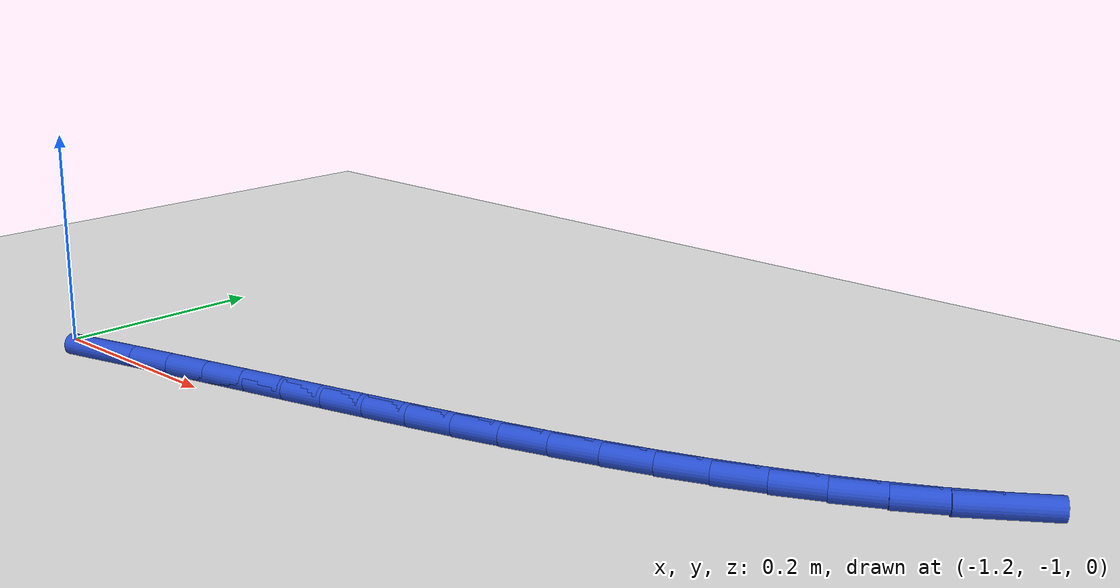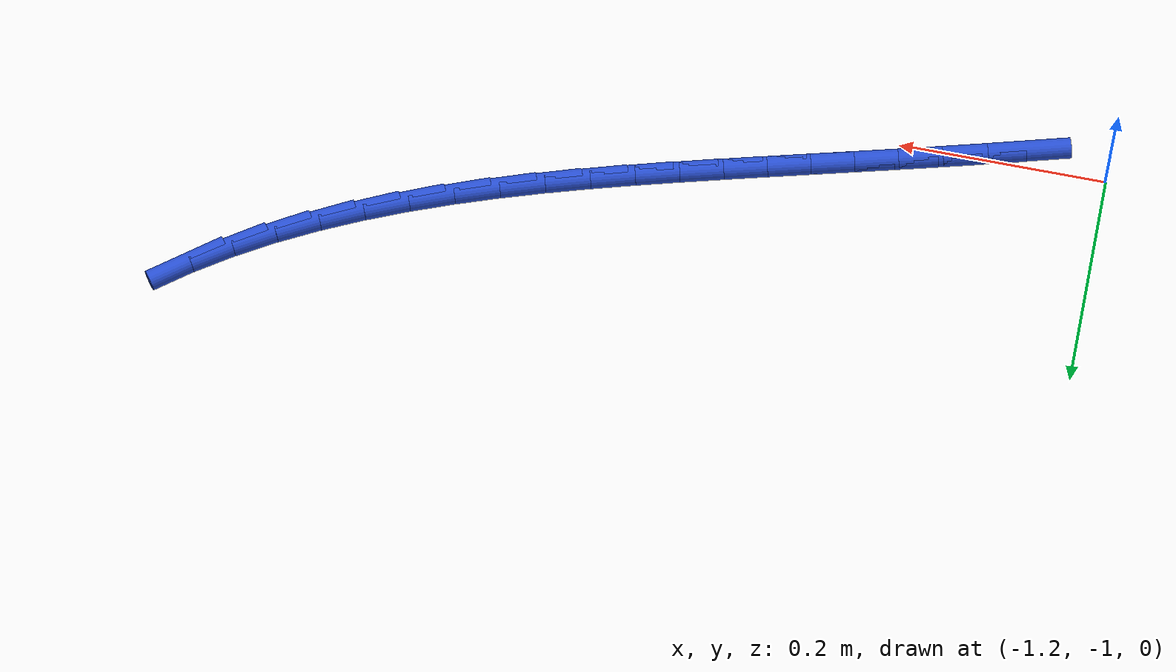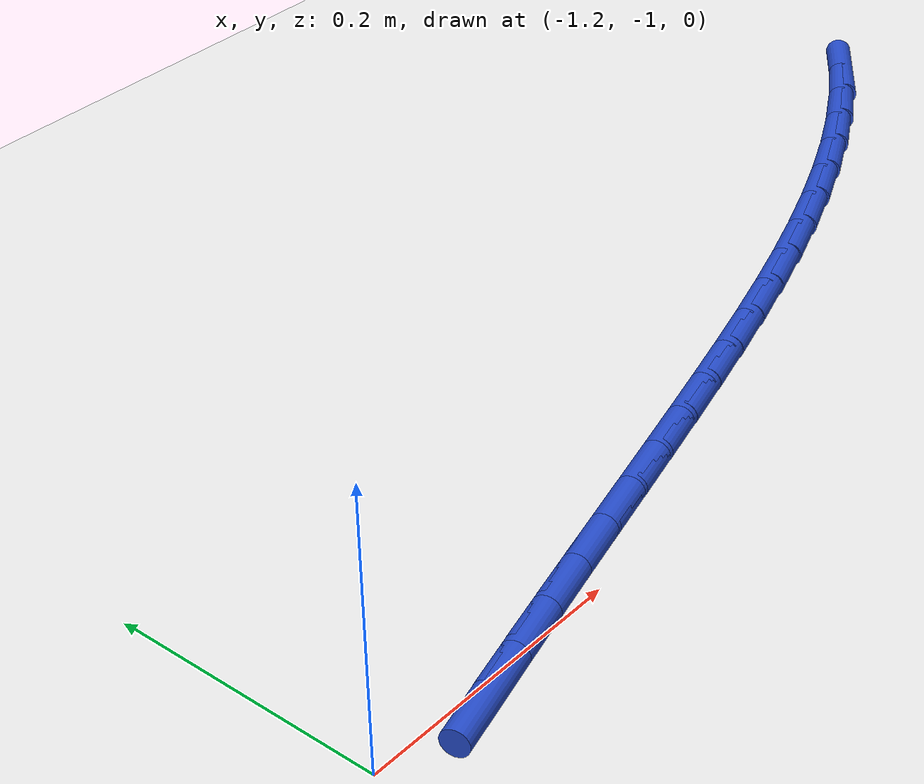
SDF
<sdf version="1.6">
 <world name="default">
  <model name="ground_plane">
   <static>1</static>
   <link name="link">
    <collision name="collision">
     <geometry><plane><normal>0 0 1</normal><size>100 100</size></plane></geometry>
     <surface><friction><ode><mu>100</mu><mu2>50</mu2></ode></friction></surface>
    </collision>
    <visual name="visual">
     <cast_shadows>0</cast_shadows>
     <geometry><plane><normal>0 0 1</normal><size>100 100</size></plane></geometry>
     <material>
      <script><uri>file://media/materials/scripts/gazebo.material</uri><name>Gazebo/WhiteGlow</name></script>
     </material>
    </visual>
   </link>
  </model>
  <model name="line">
   <link name="link_121">
    <pose>-1.1230190456275513 -1.0149534131254005 0.01 0 1.57 0.2595885496614869</pose>
    <collision name="collision">
     <geometry><cylinder><radius>0.01</radius><length>0.08</length></cylinder></geometry>
    </collision>
    <visual name="visual">
     <material>
      <script><name>Gazebo/Blue</name><uri>file://media/materials/scripts/gazebo.material</uri></script>
     </material>
     <geometry><cylinder><radius>0.01</radius><length>0.08</length></cylinder></geometry>
    </visual>
   </link>
   <link name="link_122">
    <pose>-1.081125378128652 -1.0038272500838106 0.01 0 1.57 0.25399194466059727</pose>
    <collision name="collision">
     <geometry><cylinder><radius>0.01</radius><length>0.08</length></cylinder></geometry>
    </collision>
    <visual name="visual">
     <material>
      <script><name>Gazebo/Blue</name><uri>file://media/materials/scripts/gazebo.material</uri></script>
     </material>
     <geometry><cylinder><radius>0.01</radius><length>0.08</length></cylinder></geometry>
    </visual>
   </link>
   <link name="link_123">
    <pose>-1.0398389637735534 -0.9931093588447107 0.01 0 1.57 0.24982112496860928</pose>
    <collision name="collision">
     <geometry><cylinder><radius>0.01</radius><length>0.08</length></cylinder></geometry>
    </collision>
    <visual name="visual">
     <material>
      <script><name>Gazebo/Blue</name><uri>file://media/materials/scripts/gazebo.material</uri></script>
     </material>
     <geometry><cylinder><radius>0.01</radius><length>0.08</length></cylinder></geometry>
    </visual>
   </link>
   <link name="link_124">
    <pose>-0.998987443772533 -0.9826860366377409 0.01 0 1.57 0.24718516527286663</pose>
    <collision name="collision">
     <geometry><cylinder><radius>0.01</radius><length>0.08</length></cylinder></geometry>
    </collision>
    <visual name="visual">
     <material>
      <script><name>Gazebo/Blue</name><uri>file://media/materials/scripts/gazebo.material</uri></script>
     </material>
     <geometry><cylinder><radius>0.01</radius><length>0.08</length></cylinder></geometry>
    </visual>
   </link>
   <link name="link_125">
    <pose>-0.958398459335868 -0.9724435806925407 0.01 0 1.57 0.24615402146520848</pose>
    <collision name="collision">
     <geometry><cylinder><radius>0.01</radius><length>0.08</length></cylinder></geometry>
    </collision>
    <visual name="visual">
     <material>
      <script><name>Gazebo/Blue</name><uri>file://media/materials/scripts/gazebo.material</uri></script>
     </material>
     <geometry><cylinder><radius>0.01</radius><length>0.08</length></cylinder></geometry>
    </visual>
   </link>
   <link name="link_126">
    <pose>-0.9178996516738354 -0.9622682882387499 0.01 0 1.57 0.24675405811735462</pose>
    <collision name="collision">
     <geometry><cylinder><radius>0.01</radius><length>0.08</length></cylinder></geometry>
    </collision>
    <visual name="visual">
     <material>
      <script><name>Gazebo/Blue</name><uri>file://media/materials/scripts/gazebo.material</uri></script>
     </material>
     <geometry><cylinder><radius>0.01</radius><length>0.08</length></cylinder></geometry>
    </visual>
   </link>
   <link name="link_127">
    <pose>-0.8773186619967142 -0.9520464565060094 0.01 0 1.57 0.2489663688771737</pose>
    <collision name="collision">
     <geometry><cylinder><radius>0.01</radius><length>0.08</length></cylinder></geometry>
    </collision>
    <visual name="visual">
     <material>
      <script><name>Gazebo/Blue</name><uri>file://media/materials/scripts/gazebo.material</uri></script>
     </material>
     <geometry><cylinder><radius>0.01</radius><length>0.08</length></cylinder></geometry>
    </visual>
   </link>
   <link name="link_128">
    <pose>-0.8364831315147809 -0.9416643827239582 0.01 0 1.57 0.25280967252865216</pose>
    <collision name="collision">
     <geometry><cylinder><radius>0.01</radius><length>0.08</length></cylinder></geometry>
    </collision>
    <visual name="visual">
     <material>
      <script><name>Gazebo/Blue</name><uri>file://media/materials/scripts/gazebo.material</uri></script>
     </material>
     <geometry><cylinder><radius>0.01</radius><length>0.08</length></cylinder></geometry>
    </visual>
   </link>
   <link name="link_129">
    <pose>-0.7952308075753342 -0.9310073836071564 0.01 0 1.57 0.25963830272456306</pose>
    <collision name="collision">
     <geometry><cylinder><radius>0.01</radius><length>0.08</length></cylinder></geometry>
    </collision>
    <visual name="visual">
     <material>
      <script><name>Gazebo/Blue</name><uri>file://media/materials/scripts/gazebo.material</uri></script>
     </material>
     <geometry><cylinder><radius>0.01</radius><length>0.08</length></cylinder></geometry>
    </visual>
   </link>
   <link name="link_130">
    <pose>-0.7535793279539508 -0.919943322586336 0.01 0 1.57 0.27062406815468726</pose>
    <collision name="collision">
     <geometry><cylinder><radius>0.01</radius><length>0.08</length></cylinder></geometry>
    </collision>
    <visual name="visual">
     <material>
      <script><name>Gazebo/Blue</name><uri>file://media/materials/scripts/gazebo.material</uri></script>
     </material>
     <geometry><cylinder><radius>0.01</radius><length>0.08</length></cylinder></geometry>
    </visual>
   </link>
   <link name="link_131">
    <pose>-0.7117011168996977 -0.9083250454379833 0.01 0 1.57 0.2857996156645322</pose>
    <collision name="collision">
     <geometry><cylinder><radius>0.01</radius><length>0.08</length></cylinder></geometry>
    </collision>
    <visual name="visual">
     <material>
      <script><name>Gazebo/Blue</name><uri>file://media/materials/scripts/gazebo.material</uri></script>
     </material>
     <geometry><cylinder><radius>0.01</radius><length>0.08</length></cylinder></geometry>
    </visual>
   </link>
   <link name="link_132">
    <pose>-0.6697736484255705 -0.89600490800166 0.01 0 1.57 0.3052234510997782</pose>
    <collision name="collision">
     <geometry><cylinder><radius>0.01</radius><length>0.08</length></cylinder></geometry>
    </collision>
    <visual name="visual">
     <material>
      <script><name>Gazebo/Blue</name><uri>file://media/materials/scripts/gazebo.material</uri></script>
     </material>
     <geometry><cylinder><radius>0.01</radius><length>0.08</length></cylinder></geometry>
    </visual>
   </link>
   <link name="link_133">
    <pose>-0.6279743965445617 -0.8828352661169275 0.01 0 1.57 0.32901208234320733</pose>
    <collision name="collision">
     <geometry><cylinder><radius>0.01</radius><length>0.08</length></cylinder></geometry>
    </collision>
    <visual name="visual">
     <material>
      <script><name>Gazebo/Blue</name><uri>file://media/materials/scripts/gazebo.material</uri></script>
     </material>
     <geometry><cylinder><radius>0.01</radius><length>0.08</length></cylinder></geometry>
    </visual>
   </link>
   <link name="link_134">
    <pose>-0.5864808352696654 -0.8686684756233484 0.01 0 1.57 0.3573308368852036</pose>
    <collision name="collision">
     <geometry><cylinder><radius>0.01</radius><length>0.08</length></cylinder></geometry>
    </collision>
    <visual name="visual">
     <material>
      <script><name>Gazebo/Blue</name><uri>file://media/materials/scripts/gazebo.material</uri></script>
     </material>
     <geometry><cylinder><radius>0.01</radius><length>0.08</length></cylinder></geometry>
    </visual>
   </link>
   <link name="link_135">
    <pose>-0.5454704386138752 -0.8533568923604837 0.01 0 1.57 0.3903826997491271</pose>
    <collision name="collision">
     <geometry><cylinder><radius>0.01</radius><length>0.08</length></cylinder></geometry>
    </collision>
    <visual name="visual">
     <material>
      <script><name>Gazebo/Blue</name><uri>file://media/materials/scripts/gazebo.material</uri></script>
     </material>
     <geometry><cylinder><radius>0.01</radius><length>0.08</length></cylinder></geometry>
    </visual>
   </link>
   <link name="link_136">
    <pose>-0.5051206805901846 -0.8367528721678956 0.01 0 1.57 0.4283935000169124</pose>
    <collision name="collision">
     <geometry><cylinder><radius>0.01</radius><length>0.08</length></cylinder></geometry>
    </collision>
    <visual name="visual">
     <material>
      <script><name>Gazebo/Blue</name><uri>file://media/materials/scripts/gazebo.material</uri></script>
     </material>
     <geometry><cylinder><radius>0.01</radius><length>0.08</length></cylinder></geometry>
    </visual>
   </link>
   <link name="link_137">
    <pose>-0.46560903521158814 -0.818708770885146 0.01 0 1.57 0.4715915840421645</pose>
    <collision name="collision">
     <geometry><cylinder><radius>0.01</radius><length>0.08</length></cylinder></geometry>
    </collision>
    <visual name="visual">
     <material>
      <script><name>Gazebo/Blue</name><uri>file://media/materials/scripts/gazebo.material</uri></script>
     </material>
     <geometry><cylinder><radius>0.01</radius><length>0.08</length></cylinder></geometry>
    </visual>
   </link>
   <link name="link_138">
    <pose>-0.4271129764910792 -0.7990769443517965 0.01 0 1.57 0.5201801300085832</pose>
    <collision name="collision">
     <geometry><cylinder><radius>0.01</radius><length>0.08</length></cylinder></geometry>
    </collision>
    <visual name="visual">
     <material>
      <script><name>Gazebo/Blue</name><uri>file://media/materials/scripts/gazebo.material</uri></script>
     </material>
     <geometry><cylinder><radius>0.01</radius><length>0.08</length></cylinder></geometry>
    </visual>
   </link>
   <link name="link_139">
    <pose>-0.38980997844165166 -0.7777097484074091 0.01 0 1.57 0.5743007507468983</pose>
    <collision name="collision">
     <geometry><cylinder><radius>0.01</radius><length>0.08</length></cylinder></geometry>
    </collision>
    <visual name="visual">
     <material>
      <script><name>Gazebo/Blue</name><uri>file://media/materials/scripts/gazebo.material</uri></script>
     </material>
     <geometry><cylinder><radius>0.01</radius><length>0.08</length></cylinder></geometry>
    </visual>
   </link>
   <link name="link_140">
    <pose>-0.3538775150762991 -0.7544595388915454 0.01 0 1.57 0.6339883625936804</pose>
    <collision name="collision">
     <geometry><cylinder><radius>0.01</radius><length>0.08</length></cylinder></geometry>
    </collision>
    <visual name="visual">
     <material>
      <script><name>Gazebo/Blue</name><uri>file://media/materials/scripts/gazebo.material</uri></script>
     </material>
     <geometry><cylinder><radius>0.01</radius><length>0.08</length></cylinder></geometry>
    </visual>
   </link>
  </model>
 </world>
</sdf>
